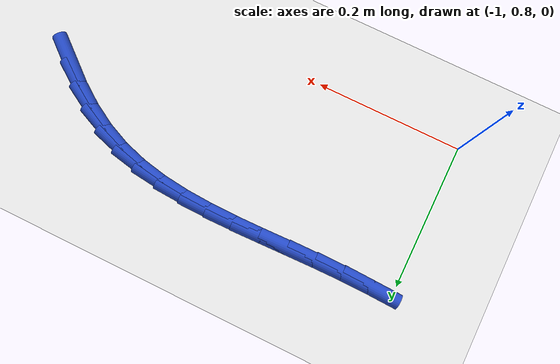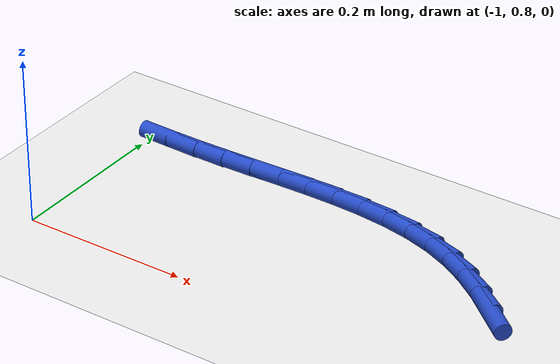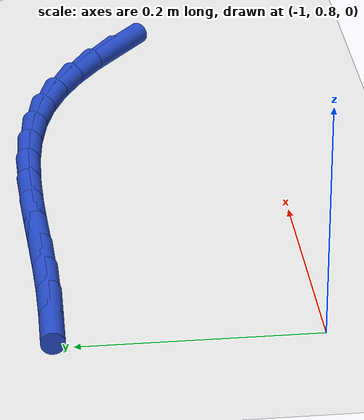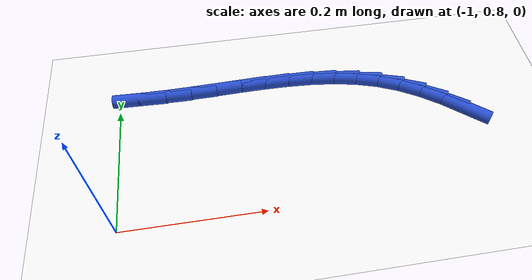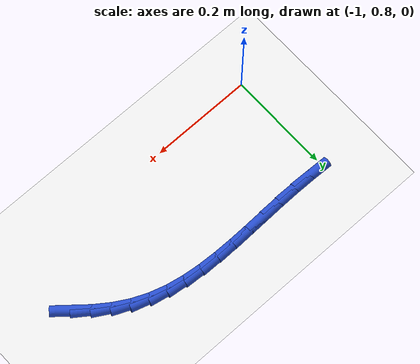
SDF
<sdf version="1.6">
 <world name="default">
  <model name="ground_plane">
   <static>1</static>
   <link name="link">
    <collision name="collision">
     <geometry><plane><normal>0 0 1</normal><size>100 100</size></plane></geometry>
     <surface><friction><ode><mu>100</mu><mu2>50</mu2></ode></friction></surface>
    </collision>
    <visual name="visual">
     <cast_shadows>0</cast_shadows>
     <geometry><plane><normal>0 0 1</normal><size>100 100</size></plane></geometry>
     <material>
      <script><uri>file://media/materials/scripts/gazebo.material</uri><name>Gazebo/WhiteGlow</name></script>
     </material>
    </visual>
   </link>
  </model>
  <model name="line">
   <link name="link_29">
    <pose>-0.4868600026503752 0.9209485363064889 0.01 0 1.57 -0.7038702975941552</pose>
    <collision name="collision">
     <geometry><cylinder><radius>0.01</radius><length>0.08</length></cylinder></geometry>
    </collision>
    <visual name="visual">
     <material>
      <script><name>Gazebo/Blue</name><uri>file://media/materials/scripts/gazebo.material</uri></script>
     </material>
     <geometry><cylinder><radius>0.01</radius><length>0.08</length></cylinder></geometry>
    </visual>
   </link>
   <link name="link_30">
    <pose>-0.5140434065535402 0.9440252382142098 0.01 0 1.57 -0.6228320001989989</pose>
    <collision name="collision">
     <geometry><cylinder><radius>0.01</radius><length>0.08</length></cylinder></geometry>
    </collision>
    <visual name="visual">
     <material>
      <script><name>Gazebo/Blue</name><uri>file://media/materials/scripts/gazebo.material</uri></script>
     </material>
     <geometry><cylinder><radius>0.01</radius><length>0.08</length></cylinder></geometry>
    </visual>
   </link>
   <link name="link_31">
    <pose>-0.542392353812076 0.9643852552282838 0.01 0 1.57 -0.5262416762711223</pose>
    <collision name="collision">
     <geometry><cylinder><radius>0.01</radius><length>0.08</length></cylinder></geometry>
    </collision>
    <visual name="visual">
     <material>
      <script><name>Gazebo/Blue</name><uri>file://media/materials/scripts/gazebo.material</uri></script>
     </material>
     <geometry><cylinder><radius>0.01</radius><length>0.08</length></cylinder></geometry>
    </visual>
   </link>
   <link name="link_32">
    <pose>-0.5720656357610294 0.9816218573062045 0.01 0 1.57 -0.41446485047963744</pose>
    <collision name="collision">
     <geometry><cylinder><radius>0.01</radius><length>0.08</length></cylinder></geometry>
    </collision>
    <visual name="visual">
     <material>
      <script><name>Gazebo/Blue</name><uri>file://media/materials/scripts/gazebo.material</uri></script>
     </material>
     <geometry><cylinder><radius>0.01</radius><length>0.08</length></cylinder></geometry>
    </visual>
   </link>
   <link name="link_33">
    <pose>-0.6032217873387469 0.9953290012376079 0.01 0 1.57 -0.2972617871437176</pose>
    <collision name="collision">
     <geometry><cylinder><radius>0.01</radius><length>0.08</length></cylinder></geometry>
    </collision>
    <visual name="visual">
     <material>
      <script><name>Gazebo/Blue</name><uri>file://media/materials/scripts/gazebo.material</uri></script>
     </material>
     <geometry><cylinder><radius>0.01</radius><length>0.08</length></cylinder></geometry>
    </visual>
   </link>
   <link name="link_34">
    <pose>-0.6359270481095517 1.0053478834576786 0.01 0 1.57 -0.19643885798787922</pose>
    <collision name="collision">
     <geometry><cylinder><radius>0.01</radius><length>0.08</length></cylinder></geometry>
    </collision>
    <visual name="visual">
     <material>
      <script><name>Gazebo/Blue</name><uri>file://media/materials/scripts/gazebo.material</uri></script>
     </material>
     <geometry><cylinder><radius>0.01</radius><length>0.08</length></cylinder></geometry>
    </visual>
   </link>
   <link name="link_35">
    <pose>-0.6700189533168073 1.0121323505571305 0.01 0 1.57 -0.11561062173252251</pose>
    <collision name="collision">
     <geometry><cylinder><radius>0.01</radius><length>0.08</length></cylinder></geometry>
    </collision>
    <visual name="visual">
     <material>
      <script><name>Gazebo/Blue</name><uri>file://media/materials/scripts/gazebo.material</uri></script>
     </material>
     <geometry><cylinder><radius>0.01</radius><length>0.08</length></cylinder></geometry>
    </visual>
   </link>
   <link name="link_36">
    <pose>-0.705300223469973 1.0162295103823096 0.01 0 1.57 -0.05389810244501727</pose>
    <collision name="collision">
     <geometry><cylinder><radius>0.01</radius><length>0.08</length></cylinder></geometry>
    </collision>
    <visual name="visual">
     <material>
      <script><name>Gazebo/Blue</name><uri>file://media/materials/scripts/gazebo.material</uri></script>
     </material>
     <geometry><cylinder><radius>0.01</radius><length>0.08</length></cylinder></geometry>
    </visual>
   </link>
   <link name="link_37">
    <pose>-0.7415735790785083 1.0181864707795603 0.01 0 1.57 -0.009815893577700543</pose>
    <collision name="collision">
     <geometry><cylinder><radius>0.01</radius><length>0.08</length></cylinder></geometry>
    </collision>
    <visual name="visual">
     <material>
      <script><name>Gazebo/Blue</name><uri>file://media/materials/scripts/gazebo.material</uri></script>
     </material>
     <geometry><cylinder><radius>0.01</radius><length>0.08</length></cylinder></geometry>
    </visual>
   </link>
   <link name="link_38">
    <pose>-0.7786417406518723 1.0185503395952282 0.01 0 1.57 0.018107736785815613</pose>
    <collision name="collision">
     <geometry><cylinder><radius>0.01</radius><length>0.08</length></cylinder></geometry>
    </collision>
    <visual name="visual">
     <material>
      <script><name>Gazebo/Blue</name><uri>file://media/materials/scripts/gazebo.material</uri></script>
     </material>
     <geometry><cylinder><radius>0.01</radius><length>0.08</length></cylinder></geometry>
    </visual>
   </link>
   <link name="link_39">
    <pose>-0.8163074286995248 1.017868224675658 0.01 0 1.57 0.03101492471216203</pose>
    <collision name="collision">
     <geometry><cylinder><radius>0.01</radius><length>0.08</length></cylinder></geometry>
    </collision>
    <visual name="visual">
     <material>
      <script><name>Gazebo/Blue</name><uri>file://media/materials/scripts/gazebo.material</uri></script>
     </material>
     <geometry><cylinder><radius>0.01</radius><length>0.08</length></cylinder></geometry>
    </visual>
   </link>
   <link name="link_40">
    <pose>-0.8543733637309253 1.0166872338671955 0.01 0 1.57 0.029591342434659506</pose>
    <collision name="collision">
     <geometry><cylinder><radius>0.01</radius><length>0.08</length></cylinder></geometry>
    </collision>
    <visual name="visual">
     <material>
      <script><name>Gazebo/Blue</name><uri>file://media/materials/scripts/gazebo.material</uri></script>
     </material>
     <geometry><cylinder><radius>0.01</radius><length>0.08</length></cylinder></geometry>
    </visual>
   </link>
   <link name="link_41">
    <pose>-0.8926422662555331 1.0155544750161853 0.01 0 1.57 0.014040221617793485</pose>
    <collision name="collision">
     <geometry><cylinder><radius>0.01</radius><length>0.08</length></cylinder></geometry>
    </collision>
    <visual name="visual">
     <material>
      <script><name>Gazebo/Blue</name><uri>file://media/materials/scripts/gazebo.material</uri></script>
     </material>
     <geometry><cylinder><radius>0.01</radius><length>0.08</length></cylinder></geometry>
    </visual>
   </link>
   <link name="link_42">
    <pose>-0.9309168567828072 1.0150170559689724 0.01 0 1.57 -0.012694674648862368</pose>
    <collision name="collision">
     <geometry><cylinder><radius>0.01</radius><length>0.08</length></cylinder></geometry>
    </collision>
    <visual name="visual">
     <material>
      <script><name>Gazebo/Blue</name><uri>file://media/materials/scripts/gazebo.material</uri></script>
     </material>
     <geometry><cylinder><radius>0.01</radius><length>0.08</length></cylinder></geometry>
    </visual>
   </link>
   <link name="link_43">
    <pose>-0.9690177215437014 1.0155007600349697 0.01 0 1.57 -0.03357057209838363</pose>
    <collision name="collision">
     <geometry><cylinder><radius>0.01</radius><length>0.08</length></cylinder></geometry>
    </collision>
    <visual name="visual">
     <material>
      <script><name>Gazebo/Blue</name><uri>file://media/materials/scripts/gazebo.material</uri></script>
     </material>
     <geometry><cylinder><radius>0.01</radius><length>0.08</length></cylinder></geometry>
    </visual>
   </link>
  </model>
 </world>
</sdf>
